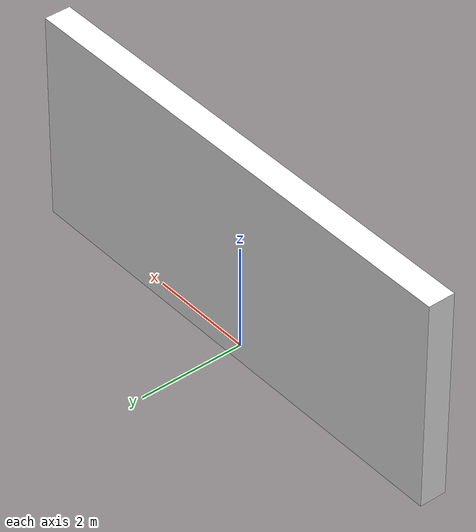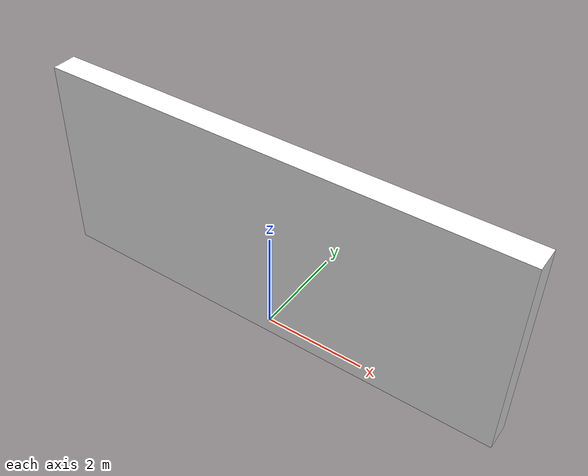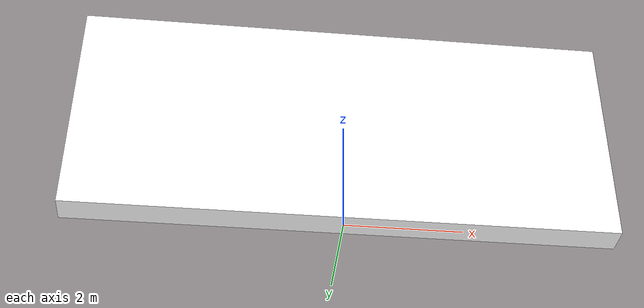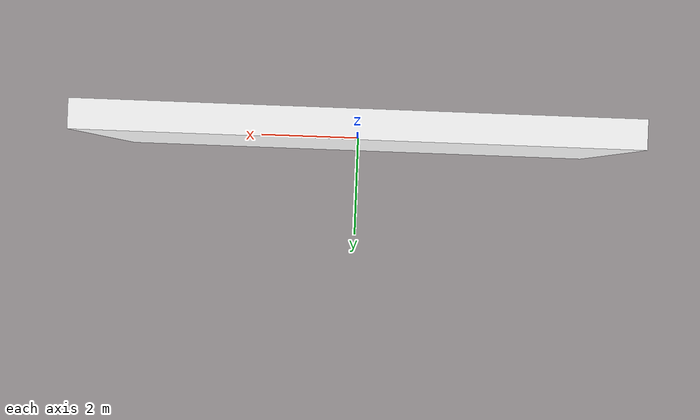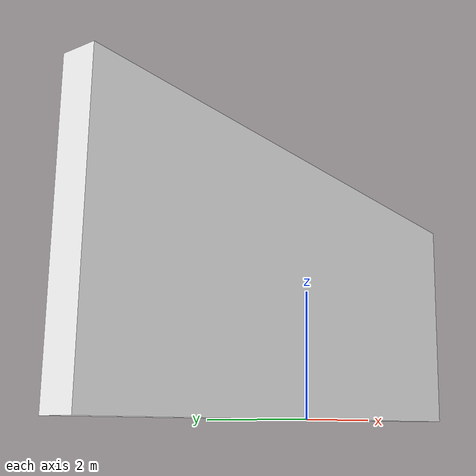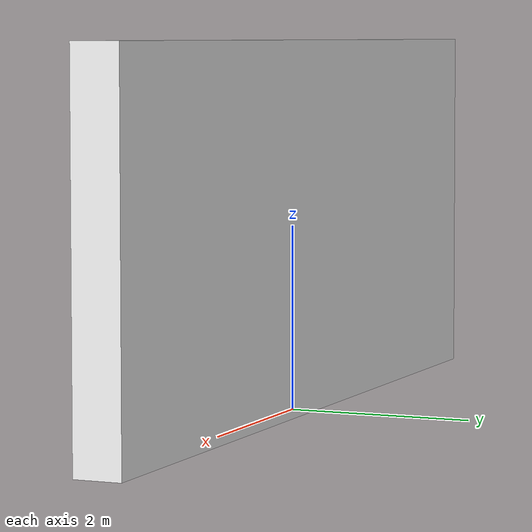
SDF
<?xml version="1.0"?>
<sdf version="1.7">

  <model name="forest_wall">
    <static>true</static>

    <link name="link">

      <collision name="collision">
        <pose>0 0 2 0 0 0</pose>
        <geometry>
          <box>
            <size>9.32 0.5 4</size>
          </box>
        </geometry>
      </collision>

      <visual name="visual">
        <pose>0 0 2 0 0 0</pose>
        <cast_shadows>false</cast_shadows>

        <geometry>
          <box>
            <size>9.32 0.5 4</size>
          </box>
        </geometry>

        <material>
          <ambient>1 1 1 1</ambient>
          <diffuse>1 1 1 1</diffuse>

          <pbr>
            <metal>
              <albedo_map>materials/textures/forest_wall.png</albedo_map>
              <roughness>1.0</roughness>
              <metalness>0.0</metalness>
            </metal>
          </pbr>
        </material>

      </visual>

    </link>

  </model>

</sdf>
